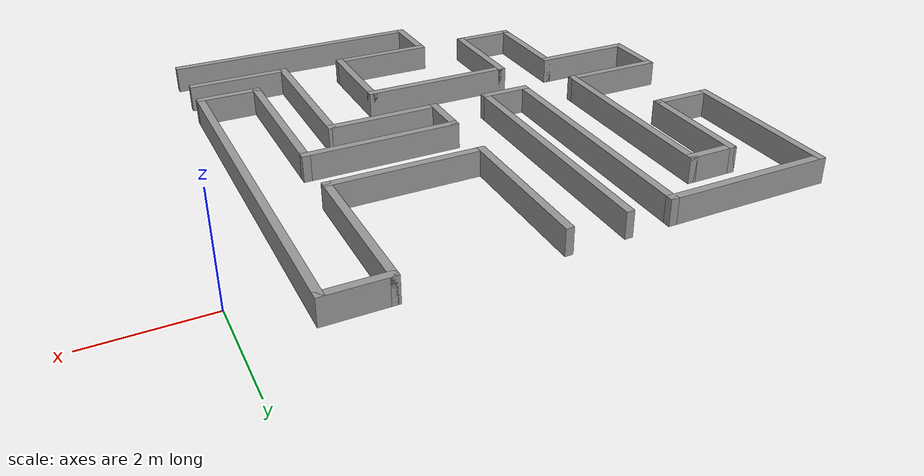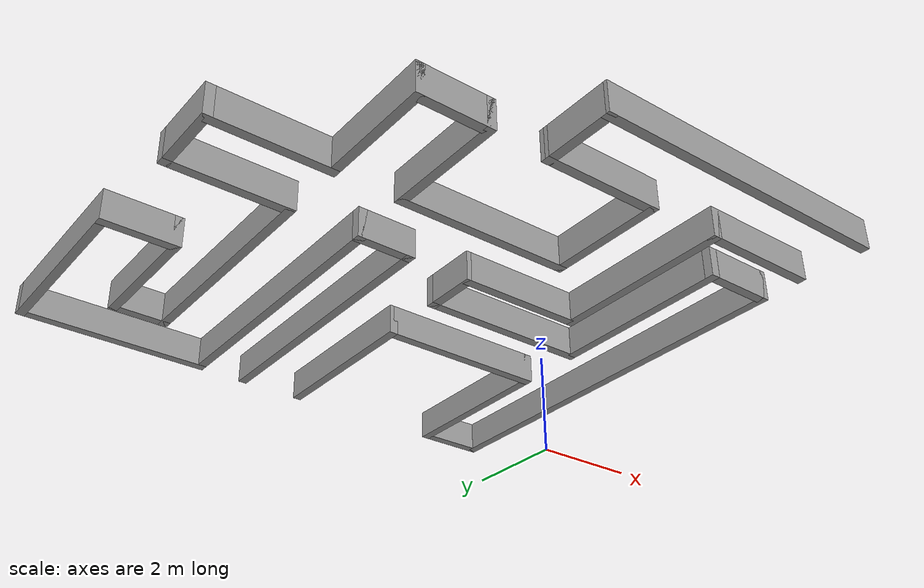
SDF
<?xml version='1.0'?>
<sdf version='1.6'>
  <model name='maze_complex'>
    <pose frame=''>-5.62361 -3.57379 0 0 -0 0</pose>
    <link name='Wall_0'>
      <collision name='Wall_0_Collision'>
        <geometry>
          <box>
            <size>5 0.15 0.5</size>
          </box>
        </geometry>
        <pose frame=''>0 0 0.25 0 -0 0</pose>
      </collision>
      <visual name='Wall_0_Visual'>
        <pose frame=''>0 0 0.25 0 -0 0</pose>
        <geometry>
          <box>
            <size>5 0.15 0.5</size>
          </box>
        </geometry>
        <material>
          <script>
            <uri>file://media/materials/scripts/gazebo.material</uri>
            <name>Gazebo/Grey</name>
          </script>
          <ambient>1 1 1 1</ambient>
        </material>
        <meta>
          <layer>0</layer>
        </meta>
      </visual>
      <pose frame=''>-0.562607 2.02521 0 0 -0 -1.5708</pose>
    </link>
    <link name='Wall_1'>
      <collision name='Wall_1_Collision'>
        <geometry>
          <box>
            <size>1 0.15 0.5</size>
          </box>
        </geometry>
        <pose frame=''>0 0 0.25 0 -0 0</pose>
      </collision>
      <visual name='Wall_1_Visual'>
        <pose frame=''>0 0 0.25 0 -0 0</pose>
        <geometry>
          <box>
            <size>1 0.15 0.5</size>
          </box>
        </geometry>
        <material>
          <script>
            <uri>file://media/materials/scripts/gazebo.material</uri>
            <name>Gazebo/Grey</name>
          </script>
          <ambient>1 1 1 1</ambient>
        </material>
        <meta>
          <layer>0</layer>
        </meta>
      </visual>
      <pose frame=''>-0.987607 -0.399792 0 0 -0 3.14159</pose>
    </link>
    <link name='Wall_11'>
      <collision name='Wall_11_Collision'>
        <geometry>
          <box>
            <size>1.25 0.15 0.5</size>
          </box>
        </geometry>
        <pose frame=''>0 0 0.25 0 -0 0</pose>
      </collision>
      <visual name='Wall_11_Visual'>
        <pose frame=''>0 0 0.25 0 -0 0</pose>
        <geometry>
          <box>
            <size>1.25 0.15 0.5</size>
          </box>
        </geometry>
        <material>
          <script>
            <uri>file://media/materials/scripts/gazebo.material</uri>
            <name>Gazebo/Grey</name>
          </script>
          <ambient>1 1 1 1</ambient>
        </material>
        <meta>
          <layer>0</layer>
        </meta>
      </visual>
      <pose frame=''>-4.41261 -0.949792 0 0 -0 -1.5708</pose>
    </link>
    <link name='Wall_12'>
      <collision name='Wall_12_Collision'>
        <geometry>
          <box>
            <size>2 0.15 0.5</size>
          </box>
        </geometry>
        <pose frame=''>0 0 0.25 0 -0 0</pose>
      </collision>
      <visual name='Wall_12_Visual'>
        <pose frame=''>0 0 0.25 0 -0 0</pose>
        <geometry>
          <box>
            <size>2 0.15 0.5</size>
          </box>
        </geometry>
        <material>
          <script>
            <uri>file://media/materials/scripts/gazebo.material</uri>
            <name>Gazebo/Grey</name>
          </script>
          <ambient>1 1 1 1</ambient>
        </material>
        <meta>
          <layer>0</layer>
        </meta>
      </visual>
      <pose frame=''>-3.48761 -1.49979 0 0 -0 0</pose>
    </link>
    <link name='Wall_14'>
      <collision name='Wall_14_Collision'>
        <geometry>
          <box>
            <size>2 0.15 0.5</size>
          </box>
        </geometry>
        <pose frame=''>0 0 0.25 0 -0 0</pose>
      </collision>
      <visual name='Wall_14_Visual'>
        <pose frame=''>0 0 0.25 0 -0 0</pose>
        <geometry>
          <box>
            <size>2 0.15 0.5</size>
          </box>
        </geometry>
        <material>
          <script>
            <uri>file://media/materials/scripts/gazebo.material</uri>
            <name>Gazebo/Grey</name>
          </script>
          <ambient>1 1 1 1</ambient>
        </material>
        <meta>
          <layer>0</layer>
        </meta>
      </visual>
      <pose frame=''>-2.56261 -2.42479 0 0 -0 -1.5708</pose>
    </link>
    <link name='Wall_15'>
      <collision name='Wall_15_Collision'>
        <geometry>
          <box>
            <size>1.25 0.15 0.5</size>
          </box>
        </geometry>
        <pose frame=''>0 0 0.25 0 -0 0</pose>
      </collision>
      <visual name='Wall_15_Visual'>
        <pose frame=''>0 0 0.25 0 -0 0</pose>
        <geometry>
          <box>
            <size>1.25 0.15 0.5</size>
          </box>
        </geometry>
        <material>
          <script>
            <uri>file://media/materials/scripts/gazebo.material</uri>
            <name>Gazebo/Grey</name>
          </script>
          <ambient>1 1 1 1</ambient>
        </material>
        <meta>
          <layer>0</layer>
        </meta>
      </visual>
      <pose frame=''>-2.01261 -3.34979 0 0 -0 0</pose>
    </link>
    <link name='Wall_16'>
      <collision name='Wall_16_Collision'>
        <geometry>
          <box>
            <size>2 0.15 0.5</size>
          </box>
        </geometry>
        <pose frame=''>0 0 0.25 0 -0 0</pose>
      </collision>
      <visual name='Wall_16_Visual'>
        <pose frame=''>0 0 0.25 0 -0 0</pose>
        <geometry>
          <box>
            <size>2 0.15 0.5</size>
          </box>
        </geometry>
        <material>
          <script>
            <uri>file://media/materials/scripts/gazebo.material</uri>
            <name>Gazebo/Grey</name>
          </script>
          <ambient>1 1 1 1</ambient>
        </material>
        <meta>
          <layer>0</layer>
        </meta>
      </visual>
      <pose frame=''>-1.46261 -2.42479 0 0 -0 1.5708</pose>
    </link>
    <link name='Wall_17'>
      <collision name='Wall_17_Collision'>
        <geometry>
          <box>
            <size>3 0.15 0.5</size>
          </box>
        </geometry>
        <pose frame=''>0 0 0.25 0 -0 0</pose>
      </collision>
      <visual name='Wall_17_Visual'>
        <pose frame=''>0 0 0.25 0 -0 0</pose>
        <geometry>
          <box>
            <size>3 0.15 0.5</size>
          </box>
        </geometry>
        <material>
          <script>
            <uri>file://media/materials/scripts/gazebo.material</uri>
            <name>Gazebo/Grey</name>
          </script>
          <ambient>1 1 1 1</ambient>
        </material>
        <meta>
          <layer>0</layer>
        </meta>
      </visual>
      <pose frame=''>-0.037607 -1.49979 0 0 -0 0</pose>
    </link>
    <link name='Wall_18'>
      <collision name='Wall_18_Collision'>
        <geometry>
          <box>
            <size>2 0.15 0.5</size>
          </box>
        </geometry>
        <pose frame=''>0 0 0.25 0 -0 0</pose>
      </collision>
      <visual name='Wall_18_Visual'>
        <pose frame=''>0 0 0.25 0 -0 0</pose>
        <geometry>
          <box>
            <size>2 0.15 0.5</size>
          </box>
        </geometry>
        <material>
          <script>
            <uri>file://media/materials/scripts/gazebo.material</uri>
            <name>Gazebo/Grey</name>
          </script>
          <ambient>1 1 1 1</ambient>
        </material>
        <meta>
          <layer>0</layer>
        </meta>
      </visual>
      <pose frame=''>1.38739 -2.42479 0 0 -0 -1.5708</pose>
    </link>
    <link name='Wall_19'>
      <collision name='Wall_19_Collision'>
        <geometry>
          <box>
            <size>2 0.15 0.5</size>
          </box>
        </geometry>
        <pose frame=''>0 0 0.25 0 -0 0</pose>
      </collision>
      <visual name='Wall_19_Visual'>
        <pose frame=''>0 0 0.25 0 -0 0</pose>
        <geometry>
          <box>
            <size>2 0.15 0.5</size>
          </box>
        </geometry>
        <material>
          <script>
            <uri>file://media/materials/scripts/gazebo.material</uri>
            <name>Gazebo/Grey</name>
          </script>
          <ambient>1 1 1 1</ambient>
        </material>
        <meta>
          <layer>0</layer>
        </meta>
      </visual>
      <pose frame=''>0.462393 -3.34979 0 0 -0 3.14159</pose>
    </link>
    <link name='Wall_2'>
      <collision name='Wall_2_Collision'>
        <geometry>
          <box>
            <size>5 0.15 0.5</size>
          </box>
        </geometry>
        <pose frame=''>0 0 0.25 0 -0 0</pose>
      </collision>
      <visual name='Wall_2_Visual'>
        <pose frame=''>0 0 0.25 0 -0 0</pose>
        <geometry>
          <box>
            <size>5 0.15 0.5</size>
          </box>
        </geometry>
        <material>
          <script>
            <uri>file://media/materials/scripts/gazebo.material</uri>
            <name>Gazebo/Grey</name>
          </script>
          <ambient>1 1 1 1</ambient>
        </material>
        <meta>
          <layer>0</layer>
        </meta>
      </visual>
      <pose frame=''>-1.41261 2.02521 0 0 -0 1.5708</pose>
    </link>
    <link name='Wall_20'>
      <collision name='Wall_20_Collision'>
        <geometry>
          <box>
            <size>1.25 0.15 0.5</size>
          </box>
        </geometry>
        <pose frame=''>0 0 0.25 0 -0 0</pose>
      </collision>
      <visual name='Wall_20_Visual'>
        <pose frame=''>0 0 0.25 0 -0 0</pose>
        <geometry>
          <box>
            <size>1.25 0.15 0.5</size>
          </box>
        </geometry>
        <material>
          <script>
            <uri>file://media/materials/scripts/gazebo.material</uri>
            <name>Gazebo/Grey</name>
          </script>
          <ambient>1 1 1 1</ambient>
        </material>
        <meta>
          <layer>0</layer>
        </meta>
      </visual>
      <pose frame=''>-0.4625 -3.9 0 0 -0 -1.5706</pose>
    </link>
    <link name='Wall_21'>
      <collision name='Wall_21_Collision'>
        <geometry>
          <box>
            <size>5.125 0.15 0.5</size>
          </box>
        </geometry>
        <pose frame=''>0 0 0.25 0 -0 0</pose>
      </collision>
      <visual name='Wall_21_Visual'>
        <pose frame=''>0 0 0.25 0 -0 0</pose>
        <geometry>
          <box>
            <size>5.125 0.15 0.5</size>
          </box>
        </geometry>
        <material>
          <script>
            <uri>file://media/materials/scripts/gazebo.material</uri>
            <name>Gazebo/Grey</name>
          </script>
          <ambient>1 1 1 1</ambient>
        </material>
        <meta>
          <layer>0</layer>
        </meta>
      </visual>
      <pose frame=''>2.02511 -4.45021 0 0 -0 0</pose>
    </link>
    <link name='Wall_24'>
      <collision name='Wall_24_Collision'>
        <geometry>
          <box>
            <size>3 0.15 0.5</size>
          </box>
        </geometry>
        <pose frame=''>0 0 0.25 0 -0 0</pose>
      </collision>
      <visual name='Wall_24_Visual'>
        <pose frame=''>0 0 0.25 0 -0 0</pose>
        <geometry>
          <box>
            <size>3 0.15 0.5</size>
          </box>
        </geometry>
        <material>
          <script>
            <uri>file://media/materials/scripts/gazebo.material</uri>
            <name>Gazebo/Grey</name>
          </script>
          <ambient>1 1 1 1</ambient>
        </material>
        <meta>
          <layer>0</layer>
        </meta>
      </visual>
      <pose frame=''>0.537393 3.02521 0 0 -0 -1.5708</pose>
    </link>
    <link name='Wall_25'>
      <collision name='Wall_25_Collision'>
        <geometry>
          <box>
            <size>3 0.15 0.5</size>
          </box>
        </geometry>
        <pose frame=''>0 0 0.25 0 -0 0</pose>
      </collision>
      <visual name='Wall_25_Visual'>
        <pose frame=''>0 0 0.25 0 -0 0</pose>
        <geometry>
          <box>
            <size>3 0.15 0.5</size>
          </box>
        </geometry>
        <material>
          <script>
            <uri>file://media/materials/scripts/gazebo.material</uri>
            <name>Gazebo/Grey</name>
          </script>
          <ambient>1 1 1 1</ambient>
        </material>
        <meta>
          <layer>0</layer>
        </meta>
      </visual>
      <pose frame=''>1.96239 1.60021 0 0 -0 0</pose>
    </link>
    <link name='Wall_26'>
      <collision name='Wall_26_Collision'>
        <geometry>
          <box>
            <size>3 0.15 0.5</size>
          </box>
        </geometry>
        <pose frame=''>0 0 0.25 0 -0 0</pose>
      </collision>
      <visual name='Wall_26_Visual'>
        <pose frame=''>0 0 0.25 0 -0 0</pose>
        <geometry>
          <box>
            <size>3 0.15 0.5</size>
          </box>
        </geometry>
        <material>
          <script>
            <uri>file://media/materials/scripts/gazebo.material</uri>
            <name>Gazebo/Grey</name>
          </script>
          <ambient>1 1 1 1</ambient>
        </material>
        <meta>
          <layer>0</layer>
        </meta>
      </visual>
      <pose frame=''>3.38739 3.02521 0 0 -0 1.5708</pose>
    </link>
    <link name='Wall_27'>
      <collision name='Wall_27_Collision'>
        <geometry>
          <box>
            <size>1.25 0.15 0.5</size>
          </box>
        </geometry>
        <pose frame=''>0 0 0.25 0 -0 0</pose>
      </collision>
      <visual name='Wall_27_Visual'>
        <pose frame=''>0 0 0.25 0 -0 0</pose>
        <geometry>
          <box>
            <size>1.25 0.15 0.5</size>
          </box>
        </geometry>
        <material>
          <script>
            <uri>file://media/materials/scripts/gazebo.material</uri>
            <name>Gazebo/Grey</name>
          </script>
          <ambient>1 1 1 1</ambient>
        </material>
        <meta>
          <layer>0</layer>
        </meta>
      </visual>
      <pose frame=''>3.93739 4.45021 0 0 -0 0</pose>
    </link>
    <link name='Wall_3'>
      <collision name='Wall_3_Collision'>
        <geometry>
          <box>
            <size>3.25 0.15 0.5</size>
          </box>
        </geometry>
        <pose frame=''>0 0 0.25 0 -0 0</pose>
      </collision>
      <visual name='Wall_3_Visual'>
        <pose frame=''>0 0 0.25 0 -0 0</pose>
        <geometry>
          <box>
            <size>3.25 0.15 0.5</size>
          </box>
        </geometry>
        <material>
          <script>
            <uri>file://media/materials/scripts/gazebo.material</uri>
            <name>Gazebo/Grey</name>
          </script>
          <ambient>1 1 1 1</ambient>
        </material>
        <meta>
          <layer>0</layer>
        </meta>
      </visual>
      <pose frame=''>-2.96261 4.45021 0 0 -0 3.14159</pose>
    </link>
    <link name='Wall_30'>
      <collision name='Wall_30_Collision'>
        <geometry>
          <box>
            <size>7.25 0.15 0.5</size>
          </box>
        </geometry>
        <pose frame=''>0 0 0.25 0 -0 0</pose>
      </collision>
      <visual name='Wall_30_Visual'>
        <pose frame=''>0 0 0.25 0 -0 0</pose>
        <geometry>
          <box>
            <size>7.25 0.15 0.5</size>
          </box>
        </geometry>
        <material>
          <script>
            <uri>file://media/materials/scripts/gazebo.material</uri>
            <name>Gazebo/Grey</name>
          </script>
          <ambient>1 1 1 1</ambient>
        </material>
        <meta>
          <layer>0</layer>
        </meta>
      </visual>
      <pose frame=''>4.48739 0.900208 0 0 -0 -1.5708</pose>
    </link>
    <link name='Wall_31'>
      <collision name='Wall_31_Collision'>
        <geometry>
          <box>
            <size>1.25 0.15 0.5</size>
          </box>
        </geometry>
        <pose frame=''>0 0 0.25 0 -0 0</pose>
      </collision>
      <visual name='Wall_31_Visual'>
        <pose frame=''>0 0 0.25 0 -0 0</pose>
        <geometry>
          <box>
            <size>1.25 0.15 0.5</size>
          </box>
        </geometry>
        <material>
          <script>
            <uri>file://media/materials/scripts/gazebo.material</uri>
            <name>Gazebo/Grey</name>
          </script>
          <ambient>1 1 1 1</ambient>
        </material>
        <meta>
          <layer>0</layer>
        </meta>
      </visual>
      <pose frame=''>3.93739 -2.64979 0 0 -0 3.14159</pose>
    </link>
    <link name='Wall_32'>
      <collision name='Wall_32_Collision'>
        <geometry>
          <box>
            <size>3.25 0.15 0.5</size>
          </box>
        </geometry>
        <pose frame=''>0 0 0.25 0 -0 0</pose>
      </collision>
      <visual name='Wall_32_Visual'>
        <pose frame=''>0 0 0.25 0 -0 0</pose>
        <geometry>
          <box>
            <size>3.25 0.15 0.5</size>
          </box>
        </geometry>
        <material>
          <script>
            <uri>file://media/materials/scripts/gazebo.material</uri>
            <name>Gazebo/Grey</name>
          </script>
          <ambient>1 1 1 1</ambient>
        </material>
        <meta>
          <layer>0</layer>
        </meta>
      </visual>
      <pose frame=''>3.38739 -1.09979 0 0 -0 1.5708</pose>
    </link>
    <link name='Wall_33'>
      <collision name='Wall_33_Collision'>
        <geometry>
          <box>
            <size>3 0.15 0.5</size>
          </box>
        </geometry>
        <pose frame=''>0 0 0.25 0 -0 0</pose>
      </collision>
      <visual name='Wall_33_Visual'>
        <pose frame=''>0 0 0.25 0 -0 0</pose>
        <geometry>
          <box>
            <size>3 0.15 0.5</size>
          </box>
        </geometry>
        <material>
          <script>
            <uri>file://media/materials/scripts/gazebo.material</uri>
            <name>Gazebo/Grey</name>
          </script>
          <ambient>1 1 1 1</ambient>
        </material>
        <meta>
          <layer>0</layer>
        </meta>
      </visual>
      <pose frame=''>1.96239 0.450208 0 0 -0 3.14159</pose>
    </link>
    <link name='Wall_35'>
      <collision name='Wall_35_Collision'>
        <geometry>
          <box>
            <size>1 0.15 0.5</size>
          </box>
        </geometry>
        <pose frame=''>0 0 0.25 0 -0 0</pose>
      </collision>
      <visual name='Wall_35_Visual'>
        <pose frame=''>0 0 0.25 0 -0 0</pose>
        <geometry>
          <box>
            <size>1 0.15 0.5</size>
          </box>
        </geometry>
        <material>
          <script>
            <uri>file://media/materials/scripts/gazebo.material</uri>
            <name>Gazebo/Grey</name>
          </script>
          <ambient>1 1 1 1</ambient>
        </material>
        <meta>
          <layer>0</layer>
        </meta>
      </visual>
      <pose frame=''>0.537393 0.025208 0 0 -0 -1.5708</pose>
    </link>
    <link name='Wall_36'>
      <collision name='Wall_36_Collision'>
        <geometry>
          <box>
            <size>2.227 0.15 0.5</size>
          </box>
        </geometry>
        <pose frame=''>0 0 0.25 0 -0 0</pose>
      </collision>
      <visual name='Wall_36_Visual'>
        <pose frame=''>0 0 0.25 0 -0 0</pose>
        <geometry>
          <box>
            <size>2.227 0.15 0.5</size>
          </box>
        </geometry>
        <material>
          <script>
            <uri>file://media/materials/scripts/gazebo.material</uri>
            <name>Gazebo/Grey</name>
          </script>
          <ambient>1 1 1 1</ambient>
        </material>
        <meta>
          <layer>0</layer>
        </meta>
      </visual>
      <pose frame=''>1.576 -0.4 0 0 -0 -0.000201</pose>
    </link>
    <link name='Wall_4'>
      <collision name='Wall_4_Collision'>
        <geometry>
          <box>
            <size>3.25 0.15 0.5</size>
          </box>
        </geometry>
        <pose frame=''>0 0 0.25 0 -0 0</pose>
      </collision>
      <visual name='Wall_4_Visual'>
        <pose frame=''>0 0 0.25 0 -0 0</pose>
        <geometry>
          <box>
            <size>3.25 0.15 0.5</size>
          </box>
        </geometry>
        <material>
          <script>
            <uri>file://media/materials/scripts/gazebo.material</uri>
            <name>Gazebo/Grey</name>
          </script>
          <ambient>1 1 1 1</ambient>
        </material>
        <meta>
          <layer>0</layer>
        </meta>
      </visual>
      <pose frame=''>-4.51261 2.90021 0 0 -0 -1.5708</pose>
    </link>
    <link name='Wall_41'>
      <collision name='Wall_41_Collision'>
        <geometry>
          <box>
            <size>3.125 0.15 0.5</size>
          </box>
        </geometry>
        <pose frame=''>0 0 0.25 0 -0 0</pose>
      </collision>
      <visual name='Wall_41_Visual'>
        <pose frame=''>0 0 0.25 0 -0 0</pose>
        <geometry>
          <box>
            <size>3.125 0.15 0.5</size>
          </box>
        </geometry>
        <material>
          <script>
            <uri>file://media/materials/scripts/gazebo.material</uri>
            <name>Gazebo/Grey</name>
          </script>
          <ambient>1 1 1 1</ambient>
        </material>
        <meta>
          <layer>0</layer>
        </meta>
      </visual>
      <pose frame=''>2.61461 -1.88771 0 0 -0 -1.5708</pose>
    </link>
    <link name='Wall_42'>
      <collision name='Wall_42_Collision'>
        <geometry>
          <box>
            <size>2 0.15 0.5</size>
          </box>
        </geometry>
        <pose frame=''>0 0 0.25 0 -0 0</pose>
      </collision>
      <visual name='Wall_42_Visual'>
        <pose frame=''>0 0 0.25 0 -0 0</pose>
        <geometry>
          <box>
            <size>2 0.15 0.5</size>
          </box>
        </geometry>
        <material>
          <script>
            <uri>file://media/materials/scripts/gazebo.material</uri>
            <name>Gazebo/Grey</name>
          </script>
          <ambient>1 1 1 1</ambient>
        </material>
        <meta>
          <layer>0</layer>
        </meta>
      </visual>
      <pose frame=''>3.53961 -3.37521 0 0 -0 0</pose>
    </link>
    <link name='Wall_5'>
      <collision name='Wall_5_Collision'>
        <geometry>
          <box>
            <size>1.25 0.15 0.5</size>
          </box>
        </geometry>
        <pose frame=''>0 0 0.25 0 -0 0</pose>
      </collision>
      <visual name='Wall_5_Visual'>
        <pose frame=''>0 0 0.25 0 -0 0</pose>
        <geometry>
          <box>
            <size>1.25 0.15 0.5</size>
          </box>
        </geometry>
        <material>
          <script>
            <uri>file://media/materials/scripts/gazebo.material</uri>
            <name>Gazebo/Grey</name>
          </script>
          <ambient>1 1 1 1</ambient>
        </material>
        <meta>
          <layer>0</layer>
        </meta>
      </visual>
      <pose frame=''>-3.96261 1.35021 0 0 -0 0</pose>
    </link>
    <link name='Wall_6'>
      <collision name='Wall_6_Collision'>
        <geometry>
          <box>
            <size>2.25 0.15 0.5</size>
          </box>
        </geometry>
        <pose frame=''>0 0 0.25 0 -0 0</pose>
      </collision>
      <visual name='Wall_6_Visual'>
        <pose frame=''>0 0 0.25 0 -0 0</pose>
        <geometry>
          <box>
            <size>2.25 0.15 0.5</size>
          </box>
        </geometry>
        <material>
          <script>
            <uri>file://media/materials/scripts/gazebo.material</uri>
            <name>Gazebo/Grey</name>
          </script>
          <ambient>1 1 1 1</ambient>
        </material>
        <meta>
          <layer>0</layer>
        </meta>
      </visual>
      <pose frame=''>-3.41261 2.40021 0 0 -0 1.5708</pose>
    </link>
    <link name='Wall_7'>
      <collision name='Wall_7_Collision'>
        <geometry>
          <box>
            <size>1 0.15 0.5</size>
          </box>
        </geometry>
        <pose frame=''>0 0 0.25 0 -0 0</pose>
      </collision>
      <visual name='Wall_7_Visual'>
        <pose frame=''>0 0 0.25 0 -0 0</pose>
        <geometry>
          <box>
            <size>1 0.15 0.5</size>
          </box>
        </geometry>
        <material>
          <script>
            <uri>file://media/materials/scripts/gazebo.material</uri>
            <name>Gazebo/Grey</name>
          </script>
          <ambient>1 1 1 1</ambient>
        </material>
        <meta>
          <layer>0</layer>
        </meta>
      </visual>
      <pose frame=''>-2.98761 3.45021 0 0 -0 0</pose>
    </link>
    <link name='Wall_8'>
      <collision name='Wall_8_Collision'>
        <geometry>
          <box>
            <size>4 0.15 0.5</size>
          </box>
        </geometry>
        <pose frame=''>0 0 0.25 0 -0 0</pose>
      </collision>
      <visual name='Wall_8_Visual'>
        <pose frame=''>0 0 0.25 0 -0 0</pose>
        <geometry>
          <box>
            <size>4 0.15 0.5</size>
          </box>
        </geometry>
        <material>
          <script>
            <uri>file://media/materials/scripts/gazebo.material</uri>
            <name>Gazebo/Grey</name>
          </script>
          <ambient>1 1 1 1</ambient>
        </material>
        <meta>
          <layer>0</layer>
        </meta>
      </visual>
      <pose frame=''>-2.56261 1.52521 0 0 -0 -1.5708</pose>
    </link>
    <link name='Wall_9'>
      <collision name='Wall_9_Collision'>
        <geometry>
          <box>
            <size>2 0.15 0.5</size>
          </box>
        </geometry>
        <pose frame=''>0 0 0.25 0 -0 0</pose>
      </collision>
      <visual name='Wall_9_Visual'>
        <pose frame=''>0 0 0.25 0 -0 0</pose>
        <geometry>
          <box>
            <size>2 0.15 0.5</size>
          </box>
        </geometry>
        <material>
          <script>
            <uri>file://media/materials/scripts/gazebo.material</uri>
            <name>Gazebo/Grey</name>
          </script>
          <ambient>1 1 1 1</ambient>
        </material>
        <meta>
          <layer>0</layer>
        </meta>
      </visual>
      <pose frame=''>-3.48761 -0.399792 0 0 -0 3.14159</pose>
    </link>
    <static>1</static>
  </model>
</sdf>
